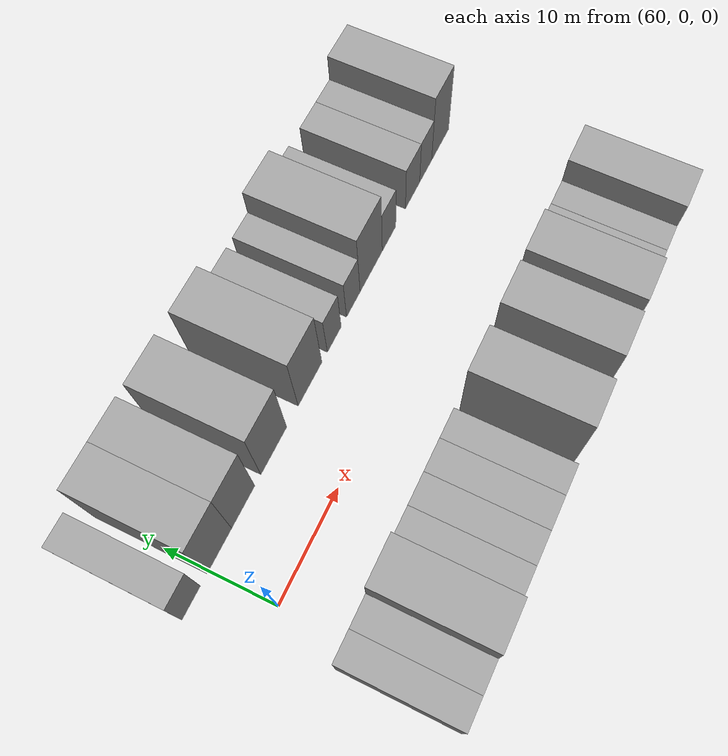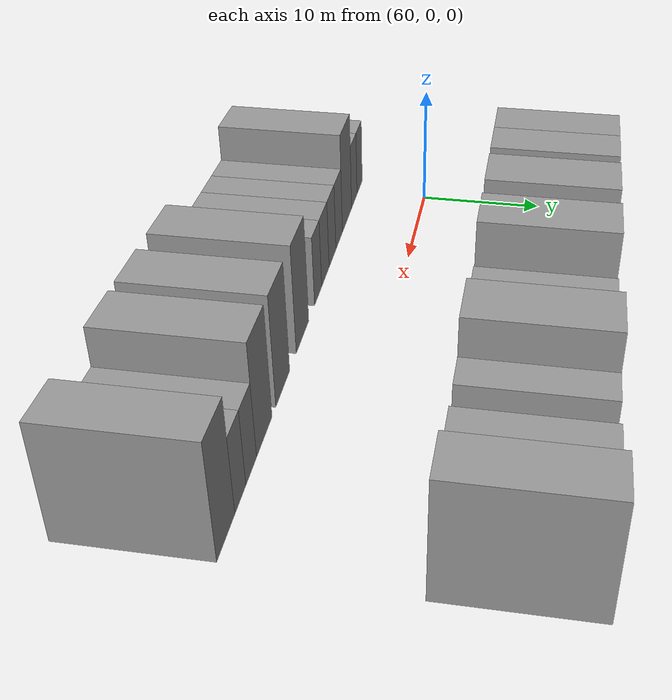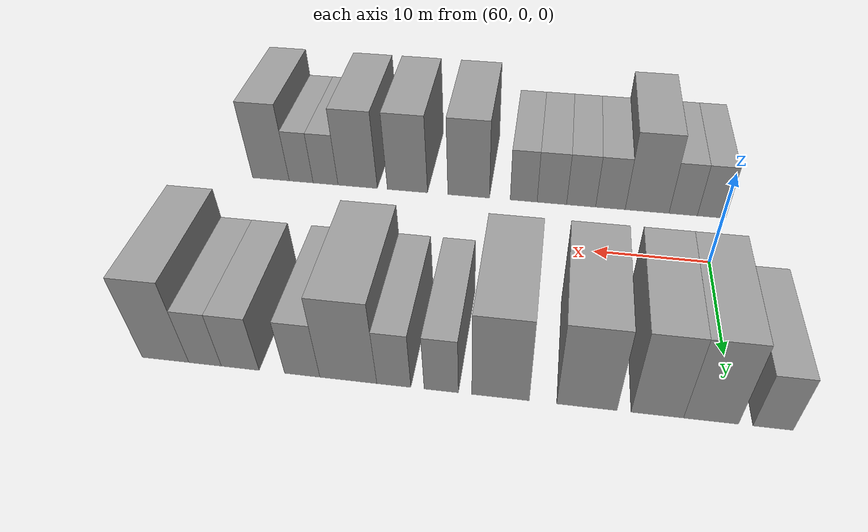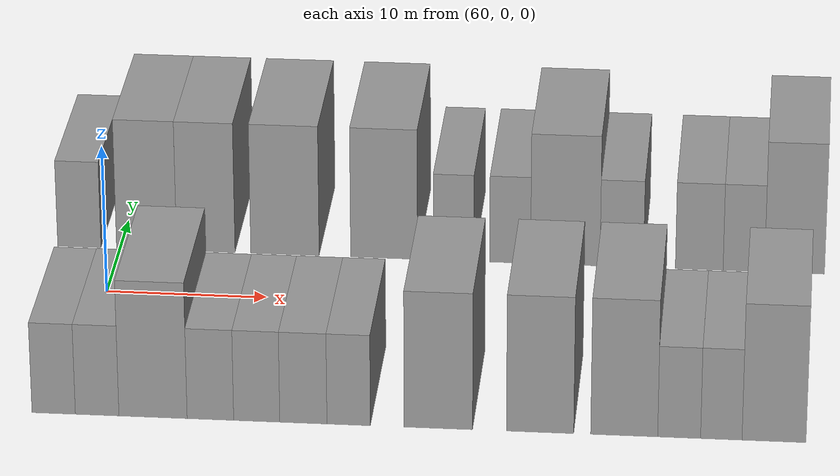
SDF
<sdf version="1.6">
 <world name="default">
  <model name="building_13">
   <static>1</static>
   <pose>57.3779 11.0000 0 0.000000 0.000000 1.570796</pose>
   <link name="link">
    <pose>0 0 3.00 0 0 0</pose>
    <collision name="collision"><geometry><box><size>10.0000 2.7582 6.0000</size></box></geometry></collision>
    <visual name="visual">
     <cast_shadows>0</cast_shadows>
     <geometry><box><size>10.0000 2.7582 6.0000</size></box></geometry>
     <material>
      <script>
       <uri>model://grey_wall/materials/scripts</uri>
       <uri>model://grey_wall/materials/textures</uri>
       <name>vrc/grey_wall</name>
      </script>
     </material>
    </visual>
   </link>
  </model>
  <model name="building_14">
   <static>1</static>
   <pose>61.6745 11.0000 0 0.000000 0.000000 1.570796</pose>
   <link name="link">
    <pose>0 0 4.50 0 0 0</pose>
    <collision name="collision"><geometry><box><size>10.0000 3.8351 9.0000</size></box></geometry></collision>
    <visual name="visual">
     <cast_shadows>0</cast_shadows>
     <geometry><box><size>10.0000 3.8351 9.0000</size></box></geometry>
     <material>
      <script>
       <uri>model://grey_wall/materials/scripts</uri>
       <uri>model://grey_wall/materials/textures</uri>
       <name>vrc/grey_wall</name>
      </script>
     </material>
    </visual>
   </link>
  </model>
  <model name="building_15">
   <static>1</static>
   <pose>65.4515 11.0000 0 0.000000 0.000000 1.570796</pose>
   <link name="link">
    <pose>0 0 4.50 0 0 0</pose>
    <collision name="collision"><geometry><box><size>10.0000 3.7188 9.0000</size></box></geometry></collision>
    <visual name="visual">
     <cast_shadows>0</cast_shadows>
     <geometry><box><size>10.0000 3.7188 9.0000</size></box></geometry>
     <material>
      <script>
       <uri>model://grey_wall/materials/scripts</uri>
       <uri>model://grey_wall/materials/textures</uri>
       <name>vrc/grey_wall</name>
      </script>
     </material>
    </visual>
   </link>
  </model>
  <model name="building_16">
   <static>1</static>
   <pose>70.4830 11.0000 0 0.000000 0.000000 1.570796</pose>
   <link name="link">
    <pose>0 0 4.50 0 0 0</pose>
    <collision name="collision"><geometry><box><size>10.0000 4.3443 9.0000</size></box></geometry></collision>
    <visual name="visual">
     <cast_shadows>0</cast_shadows>
     <geometry><box><size>10.0000 4.3443 9.0000</size></box></geometry>
     <material>
      <script>
       <uri>model://grey_wall/materials/scripts</uri>
       <uri>model://grey_wall/materials/textures</uri>
       <name>vrc/grey_wall</name>
      </script>
     </material>
    </visual>
   </link>
  </model>
  <model name="building_17">
   <static>1</static>
   <pose>76.7704 11.0000 0 0.000000 0.000000 1.570796</pose>
   <link name="link">
    <pose>0 0 4.50 0 0 0</pose>
    <collision name="collision"><geometry><box><size>10.0000 4.2305 9.0000</size></box></geometry></collision>
    <visual name="visual">
     <cast_shadows>0</cast_shadows>
     <geometry><box><size>10.0000 4.2305 9.0000</size></box></geometry>
     <material>
      <script>
       <uri>model://grey_wall/materials/scripts</uri>
       <uri>model://grey_wall/materials/textures</uri>
       <name>vrc/grey_wall</name>
      </script>
     </material>
    </visual>
   </link>
  </model>
  <model name="building_18">
   <static>1</static>
   <pose>81.1689 11.0000 0 0.000000 0.000000 1.570796</pose>
   <link name="link">
    <pose>0 0 3.00 0 0 0</pose>
    <collision name="collision"><geometry><box><size>10.0000 2.5665 6.0000</size></box></geometry></collision>
    <visual name="visual">
     <cast_shadows>0</cast_shadows>
     <geometry><box><size>10.0000 2.5665 6.0000</size></box></geometry>
     <material>
      <script>
       <uri>model://grey_wall/materials/scripts</uri>
       <uri>model://grey_wall/materials/textures</uri>
       <name>vrc/grey_wall</name>
      </script>
     </material>
    </visual>
   </link>
  </model>
  <model name="building_19">
   <static>1</static>
   <pose>84.7434 11.0000 0 0.000000 0.000000 1.570796</pose>
   <link name="link">
    <pose>0 0 3.00 0 0 0</pose>
    <collision name="collision"><geometry><box><size>10.0000 2.5826 6.0000</size></box></geometry></collision>
    <visual name="visual">
     <cast_shadows>0</cast_shadows>
     <geometry><box><size>10.0000 2.5826 6.0000</size></box></geometry>
     <material>
      <script>
       <uri>model://grey_wall/materials/scripts</uri>
       <uri>model://grey_wall/materials/textures</uri>
       <name>vrc/grey_wall</name>
      </script>
     </material>
    </visual>
   </link>
  </model>
  <model name="building_20">
   <static>1</static>
   <pose>88.2218 11.0000 0 0.000000 0.000000 1.570796</pose>
   <link name="link">
    <pose>0 0 4.50 0 0 0</pose>
    <collision name="collision"><geometry><box><size>10.0000 4.3742 9.0000</size></box></geometry></collision>
    <visual name="visual">
     <cast_shadows>0</cast_shadows>
     <geometry><box><size>10.0000 4.3742 9.0000</size></box></geometry>
     <material>
      <script>
       <uri>model://grey_wall/materials/scripts</uri>
       <uri>model://grey_wall/materials/textures</uri>
       <name>vrc/grey_wall</name>
      </script>
     </material>
    </visual>
   </link>
  </model>
  <model name="building_21">
   <static>1</static>
   <pose>91.7784 11.0000 0 0.000000 0.000000 1.570796</pose>
   <link name="link">
    <pose>0 0 3.00 0 0 0</pose>
    <collision name="collision"><geometry><box><size>10.0000 2.7390 6.0000</size></box></geometry></collision>
    <visual name="visual">
     <cast_shadows>0</cast_shadows>
     <geometry><box><size>10.0000 2.7390 6.0000</size></box></geometry>
     <material>
      <script>
       <uri>model://grey_wall/materials/scripts</uri>
       <uri>model://grey_wall/materials/textures</uri>
       <name>vrc/grey_wall</name>
      </script>
     </material>
    </visual>
   </link>
  </model>
  <model name="building_22">
   <static>1</static>
   <pose>96.6448 11.0000 0 0.000000 0.000000 1.570796</pose>
   <link name="link">
    <pose>0 0 3.00 0 0 0</pose>
    <collision name="collision"><geometry><box><size>10.0000 2.9938 6.0000</size></box></geometry></collision>
    <visual name="visual">
     <cast_shadows>0</cast_shadows>
     <geometry><box><size>10.0000 2.9938 6.0000</size></box></geometry>
     <material>
      <script>
       <uri>model://grey_wall/materials/scripts</uri>
       <uri>model://grey_wall/materials/textures</uri>
       <name>vrc/grey_wall</name>
      </script>
     </material>
    </visual>
   </link>
  </model>
  <model name="building_23">
   <static>1</static>
   <pose>99.4413 11.0000 0 0.000000 0.000000 1.570796</pose>
   <link name="link">
    <pose>0 0 3.00 0 0 0</pose>
    <collision name="collision"><geometry><box><size>10.0000 2.5992 6.0000</size></box></geometry></collision>
    <visual name="visual">
     <cast_shadows>0</cast_shadows>
     <geometry><box><size>10.0000 2.5992 6.0000</size></box></geometry>
     <material>
      <script>
       <uri>model://grey_wall/materials/scripts</uri>
       <uri>model://grey_wall/materials/textures</uri>
       <name>vrc/grey_wall</name>
      </script>
     </material>
    </visual>
   </link>
  </model>
  <model name="building_24">
   <static>1</static>
   <pose>102.6171 11.0000 0 0.000000 0.000000 1.570796</pose>
   <link name="link">
    <pose>0 0 4.50 0 0 0</pose>
    <collision name="collision"><geometry><box><size>10.0000 3.7523 9.0000</size></box></geometry></collision>
    <visual name="visual">
     <cast_shadows>0</cast_shadows>
     <geometry><box><size>10.0000 3.7523 9.0000</size></box></geometry>
     <material>
      <script>
       <uri>model://grey_wall/materials/scripts</uri>
       <uri>model://grey_wall/materials/textures</uri>
       <name>vrc/grey_wall</name>
      </script>
     </material>
    </visual>
   </link>
  </model>
  <model name="building_60">
   <static>1</static>
   <pose>59.1129 -11.0000 0 0.000000 0.000000 1.570796</pose>
   <link name="link">
    <pose>0 0 3.00 0 0 0</pose>
    <collision name="collision"><geometry><box><size>10.0000 2.5940 6.0000</size></box></geometry></collision>
    <visual name="visual">
     <cast_shadows>0</cast_shadows>
     <geometry><box><size>10.0000 2.5940 6.0000</size></box></geometry>
     <material>
      <script>
       <uri>model://grey_wall/materials/scripts</uri>
       <uri>model://grey_wall/materials/textures</uri>
       <name>vrc/grey_wall</name>
      </script>
     </material>
    </visual>
   </link>
  </model>
  <model name="building_61">
   <static>1</static>
   <pose>61.7125 -11.0000 0 0.000000 0.000000 1.570796</pose>
   <link name="link">
    <pose>0 0 3.00 0 0 0</pose>
    <collision name="collision"><geometry><box><size>10.0000 2.6053 6.0000</size></box></geometry></collision>
    <visual name="visual">
     <cast_shadows>0</cast_shadows>
     <geometry><box><size>10.0000 2.6053 6.0000</size></box></geometry>
     <material>
      <script>
       <uri>model://grey_wall/materials/scripts</uri>
       <uri>model://grey_wall/materials/textures</uri>
       <name>vrc/grey_wall</name>
      </script>
     </material>
    </visual>
   </link>
  </model>
  <model name="building_62">
   <static>1</static>
   <pose>65.0497 -11.0000 0 0.000000 0.000000 1.570796</pose>
   <link name="link">
    <pose>0 0 4.50 0 0 0</pose>
    <collision name="collision"><geometry><box><size>10.0000 4.0690 9.0000</size></box></geometry></collision>
    <visual name="visual">
     <cast_shadows>0</cast_shadows>
     <geometry><box><size>10.0000 4.0690 9.0000</size></box></geometry>
     <material>
      <script>
       <uri>model://grey_wall/materials/scripts</uri>
       <uri>model://grey_wall/materials/textures</uri>
       <name>vrc/grey_wall</name>
      </script>
     </material>
    </visual>
   </link>
  </model>
  <model name="building_63">
   <static>1</static>
   <pose>68.4718 -11.0000 0 0.000000 0.000000 1.570796</pose>
   <link name="link">
    <pose>0 0 3.00 0 0 0</pose>
    <collision name="collision"><geometry><box><size>10.0000 2.7753 6.0000</size></box></geometry></collision>
    <visual name="visual">
     <cast_shadows>0</cast_shadows>
     <geometry><box><size>10.0000 2.7753 6.0000</size></box></geometry>
     <material>
      <script>
       <uri>model://grey_wall/materials/scripts</uri>
       <uri>model://grey_wall/materials/textures</uri>
       <name>vrc/grey_wall</name>
      </script>
     </material>
    </visual>
   </link>
  </model>
  <model name="building_64">
   <static>1</static>
   <pose>71.2318 -11.0000 0 0.000000 0.000000 1.570796</pose>
   <link name="link">
    <pose>0 0 3.00 0 0 0</pose>
    <collision name="collision"><geometry><box><size>10.0000 2.7448 6.0000</size></box></geometry></collision>
    <visual name="visual">
     <cast_shadows>0</cast_shadows>
     <geometry><box><size>10.0000 2.7448 6.0000</size></box></geometry>
     <material>
      <script>
       <uri>model://grey_wall/materials/scripts</uri>
       <uri>model://grey_wall/materials/textures</uri>
       <name>vrc/grey_wall</name>
      </script>
     </material>
    </visual>
   </link>
  </model>
  <model name="building_65">
   <static>1</static>
   <pose>74.0059 -11.0000 0 0.000000 0.000000 1.570796</pose>
   <link name="link">
    <pose>0 0 3.00 0 0 0</pose>
    <collision name="collision"><geometry><box><size>10.0000 2.8035 6.0000</size></box></geometry></collision>
    <visual name="visual">
     <cast_shadows>0</cast_shadows>
     <geometry><box><size>10.0000 2.8035 6.0000</size></box></geometry>
     <material>
      <script>
       <uri>model://grey_wall/materials/scripts</uri>
       <uri>model://grey_wall/materials/textures</uri>
       <name>vrc/grey_wall</name>
      </script>
     </material>
    </visual>
   </link>
  </model>
  <model name="building_66">
   <static>1</static>
   <pose>76.6972 -11.0000 0 0.000000 0.000000 1.570796</pose>
   <link name="link">
    <pose>0 0 3.00 0 0 0</pose>
    <collision name="collision"><geometry><box><size>10.0000 2.5790 6.0000</size></box></geometry></collision>
    <visual name="visual">
     <cast_shadows>0</cast_shadows>
     <geometry><box><size>10.0000 2.5790 6.0000</size></box></geometry>
     <material>
      <script>
       <uri>model://grey_wall/materials/scripts</uri>
       <uri>model://grey_wall/materials/textures</uri>
       <name>vrc/grey_wall</name>
      </script>
     </material>
    </visual>
   </link>
  </model>
  <model name="building_67">
   <static>1</static>
   <pose>82.0123 -11.0000 0 0.000000 0.000000 1.570796</pose>
   <link name="link">
    <pose>0 0 4.50 0 0 0</pose>
    <collision name="collision"><geometry><box><size>10.0000 4.0513 9.0000</size></box></geometry></collision>
    <visual name="visual">
     <cast_shadows>0</cast_shadows>
     <geometry><box><size>10.0000 4.0513 9.0000</size></box></geometry>
     <material>
      <script>
       <uri>model://grey_wall/materials/scripts</uri>
       <uri>model://grey_wall/materials/textures</uri>
       <name>vrc/grey_wall</name>
      </script>
     </material>
    </visual>
   </link>
  </model>
  <model name="building_68">
   <static>1</static>
   <pose>88.0237 -11.0000 0 0.000000 0.000000 1.570796</pose>
   <link name="link">
    <pose>0 0 4.50 0 0 0</pose>
    <collision name="collision"><geometry><box><size>10.0000 3.9715 9.0000</size></box></geometry></collision>
    <visual name="visual">
     <cast_shadows>0</cast_shadows>
     <geometry><box><size>10.0000 3.9715 9.0000</size></box></geometry>
     <material>
      <script>
       <uri>model://grey_wall/materials/scripts</uri>
       <uri>model://grey_wall/materials/textures</uri>
       <name>vrc/grey_wall</name>
      </script>
     </material>
    </visual>
   </link>
  </model>
  <model name="building_69">
   <static>1</static>
   <pose>92.9810 -11.0000 0 0.000000 0.000000 1.570796</pose>
   <link name="link">
    <pose>0 0 4.50 0 0 0</pose>
    <collision name="collision"><geometry><box><size>10.0000 3.9431 9.0000</size></box></geometry></collision>
    <visual name="visual">
     <cast_shadows>0</cast_shadows>
     <geometry><box><size>10.0000 3.9431 9.0000</size></box></geometry>
     <material>
      <script>
       <uri>model://grey_wall/materials/scripts</uri>
       <uri>model://grey_wall/materials/textures</uri>
       <name>vrc/grey_wall</name>
      </script>
     </material>
    </visual>
   </link>
  </model>
  <model name="building_70">
   <static>1</static>
   <pose>96.2136 -11.0000 0 0.000000 0.000000 1.570796</pose>
   <link name="link">
    <pose>0 0 3.00 0 0 0</pose>
    <collision name="collision"><geometry><box><size>10.0000 2.5221 6.0000</size></box></geometry></collision>
    <visual name="visual">
     <cast_shadows>0</cast_shadows>
     <geometry><box><size>10.0000 2.5221 6.0000</size></box></geometry>
     <material>
      <script>
       <uri>model://grey_wall/materials/scripts</uri>
       <uri>model://grey_wall/materials/textures</uri>
       <name>vrc/grey_wall</name>
      </script>
     </material>
    </visual>
   </link>
  </model>
  <model name="building_71">
   <static>1</static>
   <pose>98.6908 -11.0000 0 0.000000 0.000000 1.570796</pose>
   <link name="link">
    <pose>0 0 3.00 0 0 0</pose>
    <collision name="collision"><geometry><box><size>10.0000 2.4321 6.0000</size></box></geometry></collision>
    <visual name="visual">
     <cast_shadows>0</cast_shadows>
     <geometry><box><size>10.0000 2.4321 6.0000</size></box></geometry>
     <material>
      <script>
       <uri>model://grey_wall/materials/scripts</uri>
       <uri>model://grey_wall/materials/textures</uri>
       <name>vrc/grey_wall</name>
      </script>
     </material>
    </visual>
   </link>
  </model>
  <model name="building_72">
   <static>1</static>
   <pose>101.7812 -11.0000 0 0.000000 0.000000 1.570796</pose>
   <link name="link">
    <pose>0 0 4.50 0 0 0</pose>
    <collision name="collision"><geometry><box><size>10.0000 3.7488 9.0000</size></box></geometry></collision>
    <visual name="visual">
     <cast_shadows>0</cast_shadows>
     <geometry><box><size>10.0000 3.7488 9.0000</size></box></geometry>
     <material>
      <script>
       <uri>model://grey_wall/materials/scripts</uri>
       <uri>model://grey_wall/materials/textures</uri>
       <name>vrc/grey_wall</name>
      </script>
     </material>
    </visual>
   </link>
  </model>
 </world>
</sdf>
